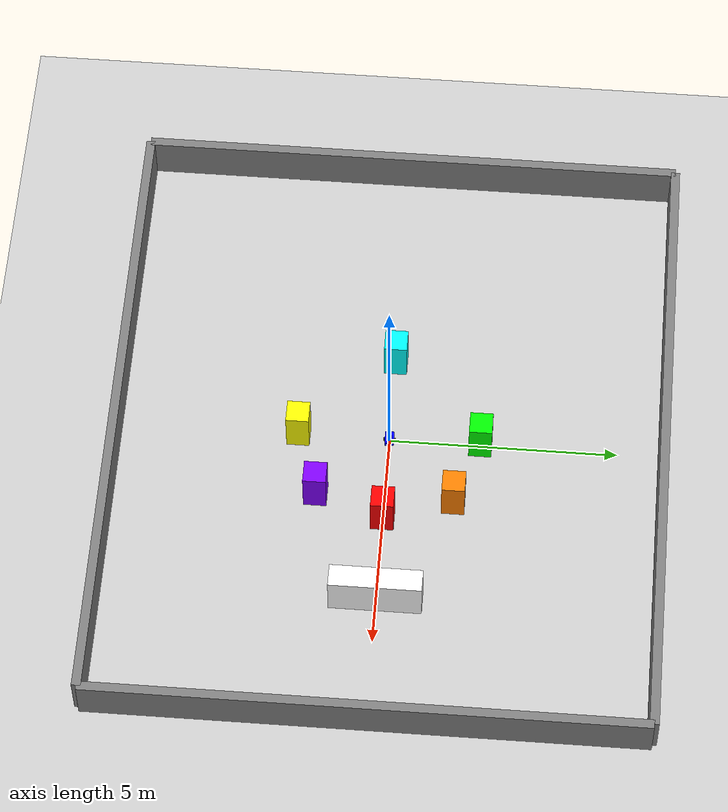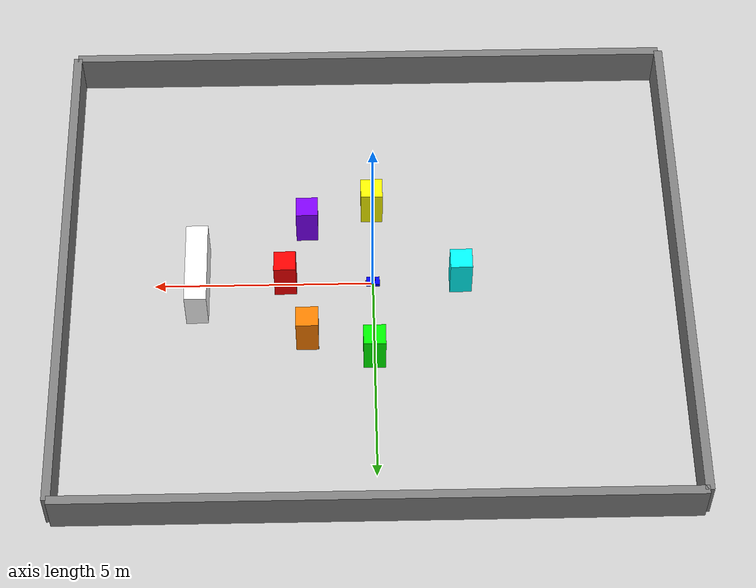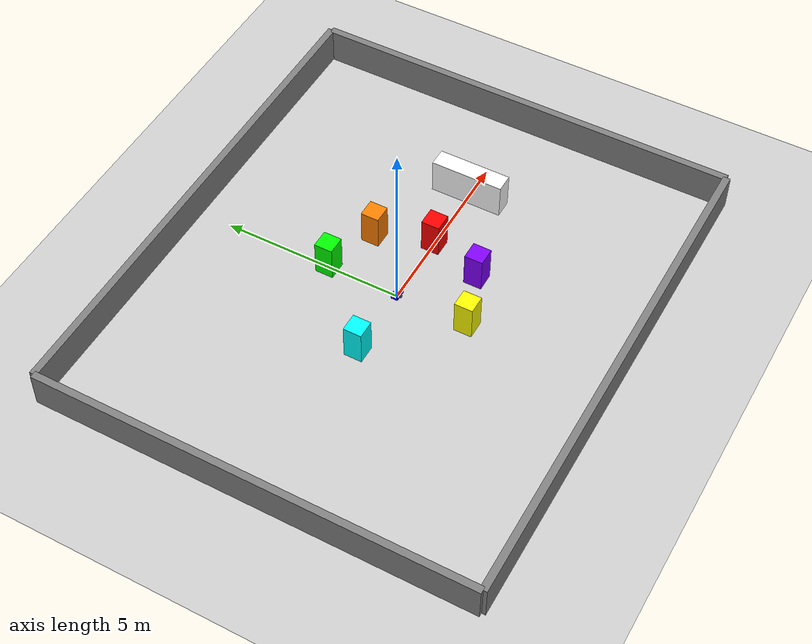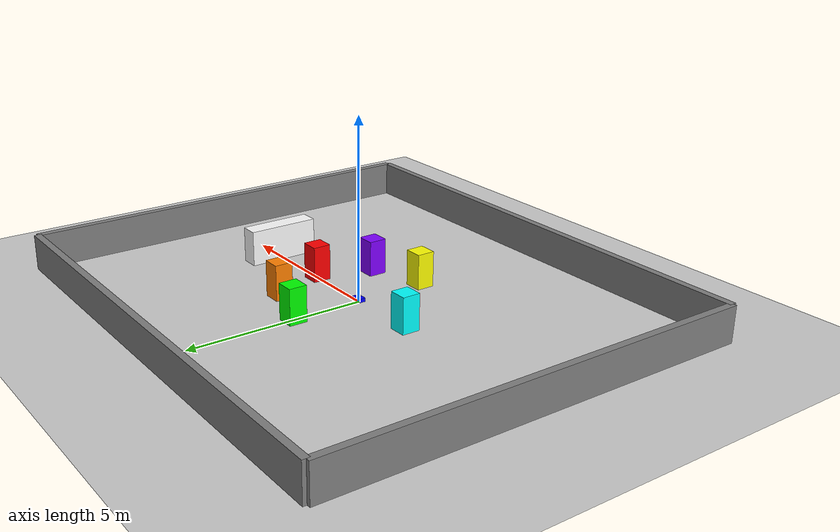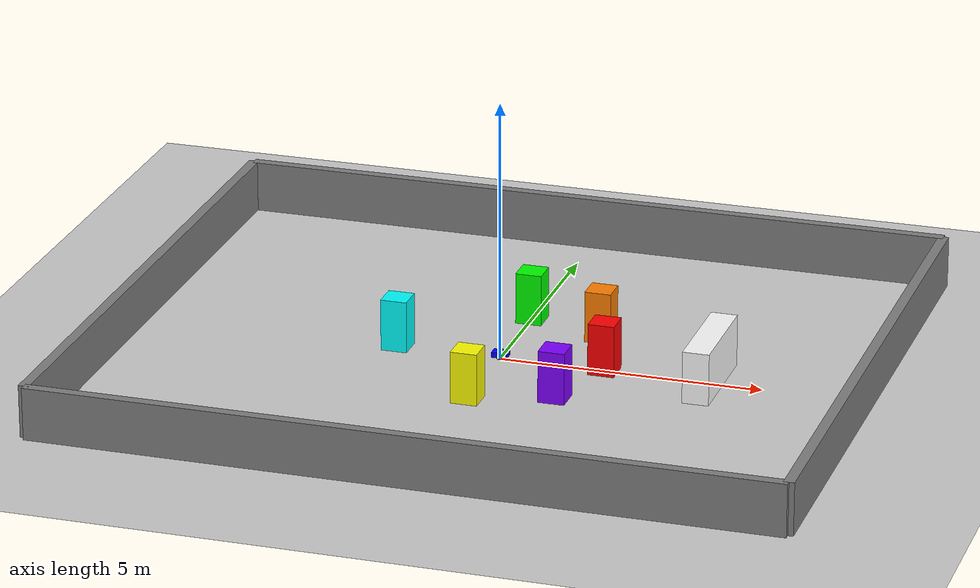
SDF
<?xml version="1.0"?>
<sdf version="1.8">
  <world name="robot_world">

    <physics name="1ms" type="ignored">
      <max_step_size>0.001</max_step_size>
      <real_time_factor>1.0</real_time_factor>
    </physics>

    <plugin filename="gz-sim-physics-system" name="gz::sim::systems::Physics"/>
    <plugin filename="gz-sim-user-commands-system" name="gz::sim::systems::UserCommands"/>
    <plugin filename="gz-sim-scene-broadcaster-system" name="gz::sim::systems::SceneBroadcaster"/>
    <plugin filename="gz-sim-sensors-system" name="gz::sim::systems::Sensors">
      <render_engine>ogre2</render_engine>
    </plugin>

    <!-- Sun -->
    <light name="sun" type="directional">
      <cast_shadows>true</cast_shadows>
      <pose>0 0 10 0 0 0</pose>
      <diffuse>1 1 1 1</diffuse>
      <specular>0.5 0.5 0.5 1</specular>
      <direction>-0.5 0.1 -0.9</direction>
    </light>

    <!-- Ground plane -->
    <model name="ground_plane">
      <static>true</static>
      <link name="link">
        <collision name="col">
          <geometry>
            <plane><normal>0 0 1</normal><size>20 20</size></plane>
          </geometry>
        </collision>
        <visual name="vis">
          <geometry>
            <plane><normal>0 0 1</normal><size>20 20</size></plane>
          </geometry>
          <material>
            <ambient>0.8 0.8 0.8 1</ambient>
            <diffuse>0.8 0.8 0.8 1</diffuse>
          </material>
        </visual>
      </link>
    </model>

    <!-- ROBOT MODEL -->
    <model name="diff_robot">
      <pose>0 0 0.1 0 0 0</pose>

      <!-- Base link -->
      <link name="base_link">
        <pose>0 0 0 0 0 0</pose>
        <inertial>
          <mass>1.0</mass>
          <inertia>
            <ixx>0.01</ixx><iyy>0.01</iyy><izz>0.01</izz>
            <ixy>0</ixy><ixz>0</ixz><iyz>0</iyz>
          </inertia>
        </inertial>
        <visual name="vis">
          <geometry><box><size>0.3 0.2 0.1</size></box></geometry>
          <material><ambient>0 0 1 1</ambient><diffuse>0 0 1 1</diffuse></material>
        </visual>
        <collision name="col">
          <geometry><box><size>0.3 0.2 0.1</size></box></geometry>
        </collision>
      </link>

      <!-- Left wheel -->
      <link name="left_wheel">
        <pose>0 0.12 -0.03 -1.5707 0 0</pose>
        <inertial>
          <mass>0.1</mass>
          <inertia>
            <ixx>0.001</ixx><iyy>0.001</iyy><izz>0.001</izz>
            <ixy>0</ixy><ixz>0</ixz><iyz>0</iyz>
          </inertia>
        </inertial>
        <visual name="vis">
          <geometry><cylinder><radius>0.04</radius><length>0.02</length></cylinder></geometry>
          <material><ambient>0 0 0 1</ambient><diffuse>0 0 0 1</diffuse></material>
        </visual>
        <collision name="col">
          <geometry><cylinder><radius>0.04</radius><length>0.02</length></cylinder></geometry>
        </collision>
      </link>

      <joint name="left_wheel_joint" type="revolute">
        <parent>base_link</parent>
        <child>left_wheel</child>
        <axis>
          <xyz>0 0 1</xyz>
          <limit><lower>-1e16</lower><upper>1e16</upper></limit>
        </axis>
      </joint>

      <!-- Right wheel -->
      <link name="right_wheel">
        <pose>0 -0.12 -0.03 -1.5707 0 0</pose>
        <inertial>
          <mass>0.1</mass>
          <inertia>
            <ixx>0.001</ixx><iyy>0.001</iyy><izz>0.001</izz>
            <ixy>0</ixy><ixz>0</ixz><iyz>0</iyz>
          </inertia>
        </inertial>
        <visual name="vis">
          <geometry><cylinder><radius>0.04</radius><length>0.02</length></cylinder></geometry>
          <material><ambient>0 0 0 1</ambient><diffuse>0 0 0 1</diffuse></material>
        </visual>
        <collision name="col">
          <geometry><cylinder><radius>0.04</radius><length>0.02</length></cylinder></geometry>
        </collision>
      </link>

      <joint name="right_wheel_joint" type="revolute">
        <parent>base_link</parent>
        <child>right_wheel</child>
        <axis>
          <xyz>0 0 1</xyz>
          <limit><lower>-1e16</lower><upper>1e16</upper></limit>
        </axis>
      </joint>

      <!-- Caster wheel -->
      <link name="caster_wheel">
        <pose>-0.1 0 -0.05 0 0 0</pose>
        <inertial>
          <mass>0.05</mass>
          <inertia>
            <ixx>0.0001</ixx><iyy>0.0001</iyy><izz>0.0001</izz>
            <ixy>0</ixy><ixz>0</ixz><iyz>0</iyz>
          </inertia>
        </inertial>
        <visual name="vis">
          <geometry><sphere><radius>0.02</radius></sphere></geometry>
          <material><ambient>0.5 0.5 0.5 1</ambient></material>
        </visual>
        <collision name="col">
          <geometry><sphere><radius>0.02</radius></sphere></geometry>
          <surface>
            <friction>
              <ode><mu>0</mu><mu2>0</mu2></ode>
            </friction>
          </surface>
        </collision>
      </link>

      <joint name="caster_joint" type="fixed">
        <parent>base_link</parent>
        <child>caster_wheel</child>
      </joint>

      <!-- Ultrasonic sensor -->
      <link name="ultrasonic_link">
        <pose>0.16 0 0.02 0 0 0</pose>
        <visual name="vis">
          <geometry><box><size>0.02 0.04 0.02</size></box></geometry>
          <material><ambient>0.5 0.5 0.5 1</ambient></material>
        </visual>
        <sensor name="ultrasonic" type="gpu_lidar">
          <always_on>true</always_on>
          <visualize>true</visualize>
          <update_rate>10</update_rate>
          <topic>ultrasonic_raw</topic>
          <lidar>
            <scan>
              <horizontal>
                <samples>10</samples>
                <resolution>1</resolution>
                <min_angle>-0.1</min_angle>
                <max_angle>0.1</max_angle>
              </horizontal>
              <vertical>
                <samples>1</samples>
                <resolution>1</resolution>
                <min_angle>0</min_angle>
                <max_angle>0</max_angle>
              </vertical>
            </scan>
            <range>
              <min>0.02</min>
              <max>4.0</max>
              <resolution>0.01</resolution>
            </range>
          </lidar>
        </sensor>
      </link>

      <joint name="ultrasonic_joint" type="fixed">
        <parent>base_link</parent>
        <child>ultrasonic_link</child>
      </joint>

      <!-- LiDAR sensor -->
      <link name="lidar_link">
        <pose>0 0 0.08 0 0 0</pose>
        <visual name="vis">
          <geometry><cylinder><radius>0.05</radius><length>0.04</length></cylinder></geometry>
          <material><ambient>0 0 0 1</ambient><diffuse>0 0 0 1</diffuse></material>
        </visual>
        <sensor name="lidar" type="gpu_lidar">
          <always_on>true</always_on>
          <visualize>true</visualize>
          <update_rate>10</update_rate>
          <topic>scan</topic>
          <lidar>
            <scan>
              <horizontal>
                <samples>360</samples>
                <resolution>1</resolution>
                <min_angle>-3.14159</min_angle>
                <max_angle>3.14159</max_angle>
              </horizontal>
              <vertical>
                <samples>1</samples>
                <resolution>1</resolution>
                <min_angle>0</min_angle>
                <max_angle>0</max_angle>
              </vertical>
            </scan>
            <range>
              <min>0.12</min>
              <max>10.0</max>
              <resolution>0.01</resolution>
            </range>
          </lidar>
        </sensor>
      </link>

      <joint name="lidar_joint" type="fixed">
        <parent>base_link</parent>
        <child>lidar_link</child>
      </joint>

      <!-- Differential drive plugin -->
      <plugin filename="gz-sim-diff-drive-system" name="gz::sim::systems::DiffDrive">
        <left_joint>left_wheel_joint</left_joint>
        <right_joint>right_wheel_joint</right_joint>
        <wheel_separation>0.24</wheel_separation>
        <wheel_radius>0.04</wheel_radius>
        <topic>/cmd_vel</topic>
        <odom_topic>/odom</odom_topic>
        <frame_id>odom</frame_id>
        <child_frame_id>base_link</child_frame_id>
        <min_velocity>-1</min_velocity>
        <max_velocity>1</max_velocity>
        <min_acceleration>-3</min_acceleration>
        <max_acceleration>3</max_acceleration>
      </plugin>

    </model>

    <!-- Obstacle 1 - front red -->
    <model name="box1">
      <static>true</static>
      <pose>2 0 0.5 0 0 0</pose>
      <link name="link">
        <collision name="col">
          <geometry><box><size>0.5 0.5 1.0</size></box></geometry>
        </collision>
        <visual name="vis">
          <geometry><box><size>0.5 0.5 1.0</size></box></geometry>
          <material><ambient>1 0 0 1</ambient><diffuse>1 0 0 1</diffuse></material>
        </visual>
      </link>
    </model>

    <!-- Obstacle 2 - left green -->
    <model name="box2">
      <static>true</static>
      <pose>0 2 0.5 0 0 0</pose>
      <link name="link">
        <collision name="col">
          <geometry><box><size>0.5 0.5 1.0</size></box></geometry>
        </collision>
        <visual name="vis">
          <geometry><box><size>0.5 0.5 1.0</size></box></geometry>
          <material><ambient>0 1 0 1</ambient><diffuse>0 1 0 1</diffuse></material>
        </visual>
      </link>
    </model>

    <!-- Obstacle 3 - right yellow -->
    <model name="box3">
      <static>true</static>
      <pose>0 -2 0.5 0 0 0</pose>
      <link name="link">
        <collision name="col">
          <geometry><box><size>0.5 0.5 1.0</size></box></geometry>
        </collision>
        <visual name="vis">
          <geometry><box><size>0.5 0.5 1.0</size></box></geometry>
          <material><ambient>1 1 0 1</ambient><diffuse>1 1 0 1</diffuse></material>
        </visual>
      </link>
    </model>

    <!-- Obstacle 4 - front left orange -->
    <model name="box4">
      <static>true</static>
      <pose>1.5 1.5 0.5 0 0 0</pose>
      <link name="link">
        <collision name="col">
          <geometry><box><size>0.5 0.5 1.0</size></box></geometry>
        </collision>
        <visual name="vis">
          <geometry><box><size>0.5 0.5 1.0</size></box></geometry>
          <material><ambient>1 0.5 0 1</ambient><diffuse>1 0.5 0 1</diffuse></material>
        </visual>
      </link>
    </model>

    <!-- Obstacle 5 - front right purple -->
    <model name="box5">
      <static>true</static>
      <pose>1.5 -1.5 0.5 0 0 0</pose>
      <link name="link">
        <collision name="col">
          <geometry><box><size>0.5 0.5 1.0</size></box></geometry>
        </collision>
        <visual name="vis">
          <geometry><box><size>0.5 0.5 1.0</size></box></geometry>
          <material><ambient>0.5 0 1 1</ambient><diffuse>0.5 0 1 1</diffuse></material>
        </visual>
      </link>
    </model>

    <!-- Obstacle 6 - far front white wall -->
    <model name="box6">
      <static>true</static>
      <pose>4 0 0.5 0 0 0</pose>
      <link name="link">
        <collision name="col">
          <geometry><box><size>0.5 2.0 1.0</size></box></geometry>
        </collision>
        <visual name="vis">
          <geometry><box><size>0.5 2.0 1.0</size></box></geometry>
          <material><ambient>1 1 1 1</ambient><diffuse>1 1 1 1</diffuse></material>
        </visual>
      </link>
    </model>

    <!-- Obstacle 7 - back cyan -->
    <model name="box7">
      <static>true</static>
      <pose>-2 0 0.5 0 0 0</pose>
      <link name="link">
        <collision name="col">
          <geometry><box><size>0.5 0.5 1.0</size></box></geometry>
        </collision>
        <visual name="vis">
          <geometry><box><size>0.5 0.5 1.0</size></box></geometry>
          <material><ambient>0 1 1 1</ambient><diffuse>0 1 1 1</diffuse></material>
        </visual>
      </link>
    </model>

    <!-- Walls -->
    <model name="wall_north">
      <static>true</static>
      <pose>0 6 0.5 0 0 0</pose>
      <link name="link">
        <collision name="col">
          <geometry><box><size>14 0.2 1.0</size></box></geometry>
        </collision>
        <visual name="vis">
          <geometry><box><size>14 0.2 1.0</size></box></geometry>
          <material><ambient>0.5 0.5 0.5 1</ambient></material>
        </visual>
      </link>
    </model>

    <model name="wall_south">
      <static>true</static>
      <pose>0 -6 0.5 0 0 0</pose>
      <link name="link">
        <collision name="col">
          <geometry><box><size>14 0.2 1.0</size></box></geometry>
        </collision>
        <visual name="vis">
          <geometry><box><size>14 0.2 1.0</size></box></geometry>
          <material><ambient>0.5 0.5 0.5 1</ambient></material>
        </visual>
      </link>
    </model>

    <model name="wall_east">
      <static>true</static>
      <pose>7 0 0.5 0 0 0</pose>
      <link name="link">
        <collision name="col">
          <geometry><box><size>0.2 12 1.0</size></box></geometry>
        </collision>
        <visual name="vis">
          <geometry><box><size>0.2 12 1.0</size></box></geometry>
          <material><ambient>0.5 0.5 0.5 1</ambient></material>
        </visual>
      </link>
    </model>

    <model name="wall_west">
      <static>true</static>
      <pose>-7 0 0.5 0 0 0</pose>
      <link name="link">
        <collision name="col">
          <geometry><box><size>0.2 12 1.0</size></box></geometry>
        </collision>
        <visual name="vis">
          <geometry><box><size>0.2 12 1.0</size></box></geometry>
          <material><ambient>0.5 0.5 0.5 1</ambient></material>
        </visual>
      </link>
    </model>

  </world>
</sdf>
